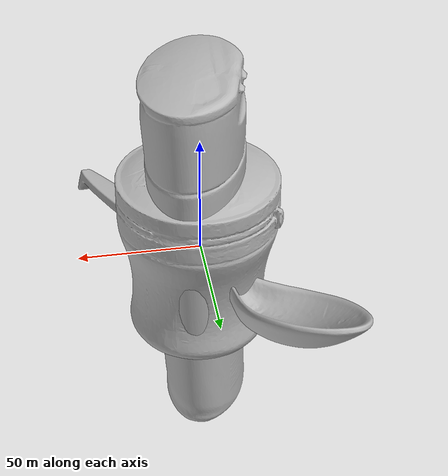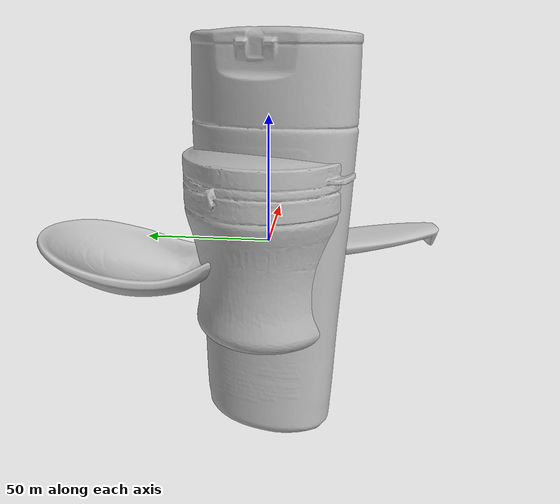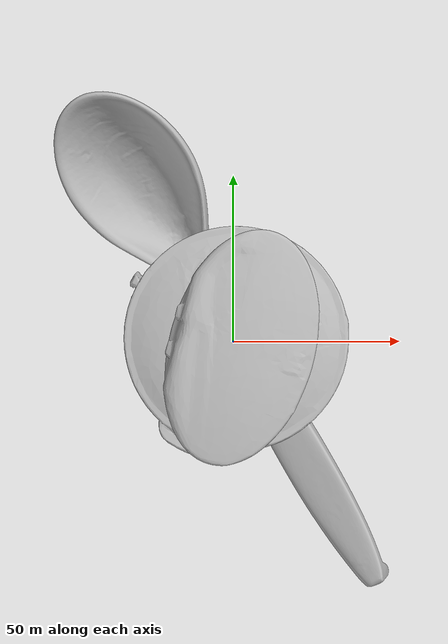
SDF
<sdf version="1.4">
 <world name="default">
  <light name="light1" type="point">
   <pose>0 0 1 0 0 0</pose>
   <diffuse>3 3 3 1</diffuse>
   <specular>3 3 3 1</specular>
  </light>
  <light name="light2" type="point">
   <pose>0 0.5 2 0 0 0</pose>
   <diffuse>1 1 1 1</diffuse>
   <specular>1 1 1 1</specular>
  </light>
  <light name="light3" type="point">
   <pose>0 0.5 2 0 0 0</pose>
   <diffuse>3 3 3 1</diffuse>
   <specular>3 3 3 1</specular>
  </light>
  <scene><ambient>0.7 0.7 0.7</ambient></scene>
  <model name="bottle1">
   <link name="link_bottle1">
    <collision name="default">
     <geometry>
      <mesh><uri>model://green_arrow/collision_meshes/collision.obj</uri><scale>1.0 1.0 1.0</scale></mesh>
     </geometry>
     <surface>
      <friction><ode><mu>0.5</mu><mu2>0.5</mu2></ode></friction>
      <contact><ode><max_vel>0</max_vel><min_depth>0.0001</min_depth><kp>1e8</kp></ode></contact>
     </surface>
    </collision>
    <visual name="default">
     <geometry>
      <mesh><uri>model://green_arrow/visual_meshes/visual.dae</uri><scale>1.0 1.0 1.0</scale></mesh>
     </geometry>
    </visual>
    <inertial>
     <mass>0.159866601228714</mass>
     <pose>0.0005358478520065546 -0.0008270691614598036 0.0022109695710241795 -0.0633227561078847 0.012984243694000861 0.6740794776591725</pose>
     <inertia>
      <ixx>0.00011596808</ixx>
      <iyy>0.00011579238</iyy>
      <izz>7.488036e-05</izz>
      <ixy>0</ixy>
      <ixz>0</ixz>
      <iyz>0</iyz>
     </inertia>
    </inertial>
   </link>
   <pose>0.2683626711368561 0.02050522156059742 0.03903084993362427 0.03851769980376681 0.024628213483476918 1.9567697195503015</pose>
  </model>
  <model name="bottle2">
   <link name="link_bottle2">
    <collision name="default">
     <geometry>
      <mesh><uri>model://conditioner/collision_meshes/collision.obj</uri><scale>1.0 1.0 1.0</scale></mesh>
     </geometry>
     <surface>
      <friction><ode><mu>0.5</mu><mu2>0.5</mu2></ode></friction>
      <contact><ode><max_vel>0</max_vel><min_depth>0.0001</min_depth><kp>1e8</kp></ode></contact>
     </surface>
    </collision>
    <visual name="default">
     <geometry>
      <mesh><uri>model://conditioner/visual_meshes/visual.dae</uri><scale>1.0 1.0 1.0</scale></mesh>
     </geometry>
    </visual>
    <inertial>
     <mass>0.1887805312871933</mass>
     <pose>-0.00055994390277192 -0.00017297487647738308 0.004359682556241751 -0.005038374268360293 0.015306043554332214 0.015072361860715313</pose>
     <inertia>
      <ixx>0.00041066532</ixx>
      <iyy>0.00043991112</iyy>
      <izz>6.3318876e-05</izz>
      <ixy>0</ixy>
      <ixz>0</ixz>
      <iyz>0</iyz>
     </inertia>
    </inertial>
   </link>
   <pose>0.003509058617055416 -0.13548359274864197 0.08122974634170532 0.03689206514768646 -0.015659884257070017 1.284356967925733</pose>
  </model>
  <model name="silverware1">
   <link name="link_silverware1">
    <collision name="default">
     <geometry>
      <mesh><uri>model://doraemon_spoon/collision_meshes/collision.obj</uri><scale>1.0 1.0 1.0</scale></mesh>
     </geometry>
     <surface>
      <friction><ode><mu>0.5</mu><mu2>0.5</mu2></ode></friction>
      <contact><ode><max_vel>0</max_vel><min_depth>0.0001</min_depth><kp>1e8</kp></ode></contact>
     </surface>
    </collision>
    <visual name="default">
     <geometry>
      <mesh><uri>model://doraemon_spoon/visual_meshes/visual.dae</uri><scale>1.0 1.0 1.0</scale></mesh>
     </geometry>
    </visual>
    <inertial>
     <mass>0.029215902090072632</mass>
     <pose>-0.022165078669786453 -0.0006374581134878099 -0.003332544816657901 -0.009147069561506448 0.07380416816022378 -0.014123831282405222</pose>
     <inertia>
      <ixx>2.2884674e-06</ixx>
      <iyy>6.499588e-05</iyy>
      <izz>6.610089e-05</izz>
      <ixy>0</ixy>
      <ixz>0</ixz>
      <iyz>0</iyz>
     </inertia>
    </inertial>
   </link>
   <pose>0.2986806631088257 0.07689500600099564 0.014739342033863068 0.27880030370676134 -0.010334376717099913 -1.0340827688183265</pose>
  </model>
  <model name="stationery1">
   <link name="link_stationery1">
    <collision name="default">
     <geometry>
      <mesh><uri>model://correction_fuid/collision_meshes/collision.obj</uri><scale>1.0 1.0 1.0</scale></mesh>
     </geometry>
     <surface>
      <friction><ode><mu>0.5</mu><mu2>0.5</mu2></ode></friction>
      <contact><ode><max_vel>0</max_vel><min_depth>0.0001</min_depth><kp>1e8</kp></ode></contact>
     </surface>
    </collision>
    <visual name="default">
     <geometry>
      <mesh><uri>model://correction_fuid/visual_meshes/visual.dae</uri><scale>1.0 1.0 1.0</scale></mesh>
     </geometry>
    </visual>
    <inertial>
     <mass>0.02664039097726345</mass>
     <pose>-0.00012557733862195164 -0.0009722907561808825 -0.001618212671019137 -0.010846611490809042 0.019488348158978066 -0.015992455472155966</pose>
     <inertia>
      <ixx>2.5801672e-05</ixx>
      <iyy>1.5615498e-06</iyy>
      <izz>2.6473212e-05</izz>
      <ixy>0</ixy>
      <ixz>0</ixz>
      <iyz>0</iyz>
     </inertia>
    </inertial>
   </link>
   <pose>0.09580884128808975 -0.23156389594078064 0.009632829576730728 -0.0017271971199140327 -0.05616840596870898 -1.3505415305188728</pose>
  </model>
  <model name="bowl1">
   <link name="link_bowl1">
    <collision name="default">
     <geometry>
      <mesh><uri>model://doraemon_bowl/collision_meshes/collision.obj</uri><scale>1.0 1.0 1.0</scale></mesh>
     </geometry>
     <surface>
      <friction><ode><mu>0.5</mu><mu2>0.5</mu2></ode></friction>
      <contact><ode><max_vel>0</max_vel><min_depth>0.0001</min_depth><kp>1e8</kp></ode></contact>
     </surface>
    </collision>
    <visual name="default">
     <geometry>
      <mesh><uri>model://doraemon_bowl/visual_meshes/visual.dae</uri><scale>1.0 1.0 1.0</scale></mesh>
     </geometry>
    </visual>
    <inertial>
     <mass>0.0632677748799324</mass>
     <pose>-0.014629557728767395 0.00048571318620815873 -0.0020864882972091436 -0.005093978566849342 -0.10568406006641042 -0.026426380562233804</pose>
     <inertia>
      <ixx>8.773087e-05</ixx>
      <iyy>0.00011545301</iyy>
      <izz>0.00016985848</izz>
      <ixy>0</ixy>
      <ixz>0</ixz>
      <iyz>0</iyz>
     </inertia>
    </inertial>
   </link>
   <pose>-0.028422612696886063 0.0929064005613327 0.02590549737215042 0.00859728125046246 0.006355374343235698 -1.1982129702018824</pose>
  </model>
  <model name="cup1">
   <link name="link_cup1">
    <collision name="default">
     <geometry>
      <mesh><uri>model://doraemon_cup/collision_meshes/collision.obj</uri><scale>1.0 1.0 1.0</scale></mesh>
     </geometry>
     <surface>
      <friction><ode><mu>0.5</mu><mu2>0.5</mu2></ode></friction>
      <contact><ode><max_vel>0</max_vel><min_depth>0.0001</min_depth><kp>1e8</kp></ode></contact>
     </surface>
    </collision>
    <visual name="default">
     <geometry>
      <mesh><uri>model://doraemon_cup/visual_meshes/visual.dae</uri><scale>1.0 1.0 1.0</scale></mesh>
     </geometry>
    </visual>
    <inertial>
     <mass>0.04278137534856796</mass>
     <pose>-0.0003292987239547074 -0.0016633577179163694 -0.0022522551007568836 0.19498548950287564 -0.013693938110122818 -0.3205458650037051</pose>
     <inertia>
      <ixx>5.8507427e-05</ixx>
      <iyy>5.6580026e-05</iyy>
      <izz>4.623892e-05</izz>
      <ixy>0</ixy>
      <ixz>0</ixz>
      <iyz>0</iyz>
     </inertia>
    </inertial>
   </link>
   <pose>0.016714954748749733 -0.018992610275745392 0.046233389526605606 -0.01131105977294085 -0.00932990358458845 -1.9142960894498418</pose>
  </model>
  <model name="plate1">
   <link name="link_plate1">
    <collision name="default">
     <geometry>
      <mesh><uri>model://hello_kitty_plate/collision_meshes/collision.obj</uri><scale>1.0 1.0 1.0</scale></mesh>
     </geometry>
     <surface>
      <friction><ode><mu>0.5</mu><mu2>0.5</mu2></ode></friction>
      <contact><ode><max_vel>0</max_vel><min_depth>0.0001</min_depth><kp>1e8</kp></ode></contact>
     </surface>
    </collision>
    <visual name="default">
     <geometry>
      <mesh><uri>model://hello_kitty_plate/visual_meshes/visual.dae</uri><scale>1.0 1.0 1.0</scale></mesh>
     </geometry>
    </visual>
    <inertial>
     <mass>0.03555070236325264</mass>
     <pose>0.0073143006302416325 0.0002893744967877865 -0.0027947186026722193 -0.00010431820965322355 -0.007054446463638022 -0.014449070801334592</pose>
     <inertia>
      <ixx>6.855243e-05</ixx>
      <iyy>0.00012937908</iyy>
      <izz>0.0001964492</izz>
      <ixy>0</ixy>
      <ixz>0</ixz>
      <iyz>0</iyz>
     </inertia>
    </inertial>
   </link>
   <pose>0.07024229317903519 0.2763798236846924 0.008291450329124928 0.0004660855997040332 0.004173323686644042 -2.80397504151843</pose>
  </model>
  <model name="box4">
   <link name="link_box4">
    <collision name="default">
     <geometry>
      <mesh><uri>model://wooden_puzzle1/collision_meshes/collision.obj</uri><scale>1.0 1.0 1.0</scale></mesh>
     </geometry>
     <surface>
      <friction><ode><mu>0.5</mu><mu2>0.5</mu2></ode></friction>
      <contact><ode><max_vel>0</max_vel><min_depth>0.0001</min_depth><kp>1e8</kp></ode></contact>
     </surface>
    </collision>
    <visual name="default">
     <geometry>
      <mesh><uri>model://wooden_puzzle1/visual_meshes/visual.dae</uri><scale>1.0 1.0 1.0</scale></mesh>
     </geometry>
    </visual>
    <inertial>
     <mass>0.03278602659702301</mass>
     <pose>-0.00017350679263472557 7.972260937094688e-05 -9.191554272547364e-05 -0.07784358361794479 -0.263610796923839 -0.5528741327723476</pose>
     <inertia>
      <ixx>6.1858273e-06</ixx>
      <iyy>6.0667485e-06</iyy>
      <izz>6.139123e-06</izz>
      <ixy>0</ixy>
      <ixz>0</ixz>
      <iyz>0</iyz>
     </inertia>
    </inertial>
   </link>
   <pose>-0.08306820690631866 -0.08927670121192932 0.01680193841457367 0.010517081216547156 -0.009460139167631667 -1.570655425014519</pose>
  </model>
  <physics type="ode">
   <max_contacts>50</max_contacts>
   <ode>
    <solver><type>quick</type><iters>75</iters></solver>
    <constraints>
     <contact_max_correcting_vel>0</contact_max_correcting_vel>
     <contact_surface_layer>0</contact_surface_layer>
    </constraints>
   </ode>
  </physics>
 </world>
</sdf>
